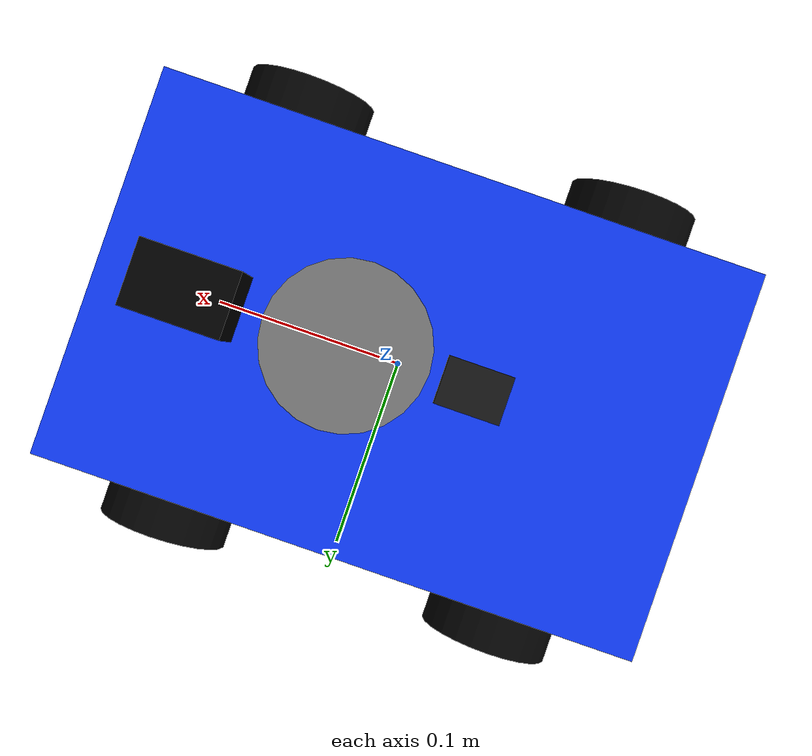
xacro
<?xml version="1.0"?>
<robot name="elegoo_robot" xmlns:xacro="http://www.ros.org/wiki/xacro">

  <!-- Robot dimensions -->

  <xacro:property name="PI" value="3.14159265359"/>

  <!-- Chassis -->
  <xacro:property name="base_length" value="0.28"/>
  <xacro:property name="base_width"  value="0.18"/>
  <xacro:property name="base_height" value="0.07"/>
  <xacro:property name="base_mass"   value="1.8"/>

  <!-- Wheels -->
  <xacro:property name="wheel_radius" value="0.032"/>
  <xacro:property name="wheel_width"  value="0.022"/>
  <xacro:property name="wheel_mass"   value="0.12"/>

  <!-- Wheel positions -->
  <xacro:property name="front_wheel_x" value="0.085"/>
  <xacro:property name="rear_wheel_x"  value="-0.085"/>
  <xacro:property name="wheel_y"       value="0.105"/>

  <!-- Diff-drive wheel separation = distance between rear driven wheels -->
  <xacro:property name="wheel_separation" value="${2.0 * wheel_y}"/>

  <!-- base_footprint is on ground, base_link is at chassis center -->
  <xacro:property name="base_z"  value="${wheel_radius + base_height/2.0}"/>
  <xacro:property name="wheel_z" value="${wheel_radius - base_z}"/>

  <!-- Top of chassis relative to base_link -->
  <xacro:property name="top_z" value="${base_height/2.0}"/>

  <!-- Camera -->
  <xacro:property name="camera_length" value="0.045"/>
  <xacro:property name="camera_width"  value="0.030"/>
  <xacro:property name="camera_height" value="0.032"/>

  <!-- IMU -->
  <xacro:property name="imu_length" value="0.030"/>
  <xacro:property name="imu_width"  value="0.022"/>
  <xacro:property name="imu_height" value="0.008"/>

  <!-- LiDAR -->
  <xacro:property name="lidar_radius" value="0.032"/>
  <xacro:property name="lidar_height" value="0.030"/>
  <xacro:property name="lidar_mount_height" value="0.055"/>

  <!-- Sensor heights relative to base_link -->
  <xacro:property name="camera_z" value="${top_z + camera_height/2.0}"/>
  <xacro:property name="imu_z"    value="${top_z + imu_height/2.0}"/>

  <!-- Materials -->

  <material name="blue">
    <color rgba="0.05 0.22 0.95 1.0"/>
  </material>

  <material name="black">
    <color rgba="0.01 0.01 0.01 1.0"/>
  </material>

  <material name="dark_gray">
    <color rgba="0.08 0.08 0.08 1.0"/>
  </material>

  <material name="gray">
    <color rgba="0.45 0.45 0.45 1.0"/>
  </material>

  <material name="camera_black">
    <color rgba="0.0 0.0 0.0 1.0"/>
  </material>

  <!-- Inertia macros -->

  <xacro:macro name="box_inertia" params="m x y z">
    <inertial>
      <mass value="${m}"/>
      <origin xyz="0 0 0" rpy="0 0 0"/>
      <inertia
        ixx="${(1.0/12.0) * m * (y*y + z*z)}"
        ixy="0"
        ixz="0"
        iyy="${(1.0/12.0) * m * (x*x + z*z)}"
        iyz="0"
        izz="${(1.0/12.0) * m * (x*x + y*y)}"/>
    </inertial>
  </xacro:macro>

  <xacro:macro name="cylinder_inertia_z" params="m r l">
    <!-- Cylinder axis is local Z -->
    <inertial>
      <mass value="${m}"/>
      <origin xyz="0 0 0" rpy="0 0 0"/>
      <inertia
        ixx="${(1.0/12.0) * m * (3.0*r*r + l*l)}"
        ixy="0"
        ixz="0"
        iyy="${(1.0/12.0) * m * (3.0*r*r + l*l)}"
        iyz="0"
        izz="${0.5 * m * r*r}"/>
    </inertial>
  </xacro:macro>

  <xacro:macro name="wheel_inertia_y" params="m r l">
    <!-- Wheel spin axis is local Y -->
    <inertial>
      <mass value="${m}"/>
      <origin xyz="0 0 0" rpy="0 0 0"/>
      <inertia
        ixx="${(1.0/12.0) * m * (3.0*r*r + l*l)}"
        ixy="0"
        ixz="0"
        iyy="${0.5 * m * r*r}"
        iyz="0"
        izz="${(1.0/12.0) * m * (3.0*r*r + l*l)}"/>
    </inertial>
  </xacro:macro>

  <!-- Base footprint and chassis -->

  <link name="base_footprint"/>

  <joint name="base_footprint_to_base_link" type="fixed">
    <parent link="base_footprint"/>
    <child link="base_link"/>
    <origin xyz="0 0 ${base_z}" rpy="0 0 0"/>
  </joint>

  <link name="base_link">
    <visual>
      <origin xyz="0 0 0" rpy="0 0 0"/>
      <geometry>
        <box size="${base_length} ${base_width} ${base_height}"/>
      </geometry>
      <material name="blue"/>
    </visual>

    <collision>
      <origin xyz="0 0 0" rpy="0 0 0"/>
      <geometry>
        <box size="${base_length} ${base_width} ${base_height}"/>
      </geometry>
    </collision>

    <xacro:box_inertia
      m="${base_mass}"
      x="${base_length}"
      y="${base_width}"
      z="${base_height}"/>
  </link>

  <gazebo reference="base_link">
    <material>Gazebo/Blue</material>
    <self_collide>false</self_collide>
  </gazebo>

  <!-- Rear driven wheel macro -->

  <xacro:macro name="rear_drive_wheel" params="name x y">
    <link name="${name}_link">
      <visual>
        <origin xyz="0 0 0" rpy="${PI/2.0} 0 0"/>
        <geometry>
          <cylinder radius="${wheel_radius}" length="${wheel_width}"/>
        </geometry>
        <material name="black"/>
      </visual>

      <collision>
        <origin xyz="0 0 0" rpy="${PI/2.0} 0 0"/>
        <geometry>
          <cylinder radius="${wheel_radius}" length="${wheel_width}"/>
        </geometry>
      </collision>

      <xacro:wheel_inertia_y
        m="${wheel_mass}"
        r="${wheel_radius}"
        l="${wheel_width}"/>
    </link>

    <joint name="${name}_joint" type="continuous">
      <parent link="base_link"/>
      <child link="${name}_link"/>
      <origin xyz="${x} ${y} ${wheel_z}" rpy="0 0 0"/>
      <axis xyz="0 1 0"/>

      <!-- Moderate damping reduces wheel jitter without locking the wheel -->
      <dynamics damping="0.10" friction="0.02"/>
    </joint>

    <gazebo reference="${name}_link">
      <material>Gazebo/Black</material>
      <self_collide>false</self_collide>

      <!-- Rear driven wheels: enough grip, not overly stiff -->
      <mu1>0.9</mu1>
      <mu2>0.7</mu2>
      <slip1>0.02</slip1>
      <slip2>0.08</slip2>
      <kp>60000.0</kp>
      <kd>6.0</kd>
    </gazebo>
  </xacro:macro>

  <!-- Front passive wheel macro -->
  <!-- Important:
       Visual looks like a wheel.
       Collision is a low-friction sphere.
       This makes the front act like caster wheels and stops them fighting turns.
  -->

  <xacro:macro name="front_passive_wheel" params="name x y">
    <link name="${name}_link">
      <!-- Visual wheel -->
      <visual>
        <origin xyz="0 0 0" rpy="${PI/2.0} 0 0"/>
        <geometry>
          <cylinder radius="${wheel_radius}" length="${wheel_width}"/>
        </geometry>
        <material name="black"/>
      </visual>

      <!-- Caster-like physics -->
      <collision>
        <origin xyz="0 0 0" rpy="0 0 0"/>
        <geometry>
          <sphere radius="${wheel_radius}"/>
        </geometry>
      </collision>

      <inertial>
        <mass value="0.03"/>
        <origin xyz="0 0 0" rpy="0 0 0"/>
        <inertia
          ixx="0.00002"
          ixy="0"
          ixz="0"
          iyy="0.00002"
          iyz="0"
          izz="0.00002"/>
      </inertial>
    </link>

    <!-- Fixed joint is more stable than a passive continuous joint.
         The sphere collision gives caster-like motion. -->
    <joint name="${name}_joint" type="fixed">
      <parent link="base_link"/>
      <child link="${name}_link"/>
      <origin xyz="${x} ${y} ${wheel_z}" rpy="0 0 0"/>
    </joint>

    <gazebo reference="${name}_link">
      <material>Gazebo/Black</material>
      <self_collide>false</self_collide>

      <!-- Very low friction so the front wheels do not steer the robot -->
      <mu1>0.03</mu1>
      <mu2>0.03</mu2>
      <slip1>1.0</slip1>
      <slip2>1.0</slip2>
      <kp>30000.0</kp>
      <kd>3.0</kd>
    </gazebo>
  </xacro:macro>

  <!-- Front wheels: passive caster-like wheels -->
  <xacro:front_passive_wheel
    name="front_left_wheel"
    x="${front_wheel_x}"
    y="${wheel_y}"/>

  <xacro:front_passive_wheel
    name="front_right_wheel"
    x="${front_wheel_x}"
    y="-${wheel_y}"/>

  <!-- Rear wheels: driven wheels -->
  <xacro:rear_drive_wheel
    name="rear_left_wheel"
    x="${rear_wheel_x}"
    y="${wheel_y}"/>

  <xacro:rear_drive_wheel
    name="rear_right_wheel"
    x="${rear_wheel_x}"
    y="-${wheel_y}"/>

  <!-- LiDAR mount -->

  <link name="lidar_mount_link">
    <visual>
      <origin xyz="0 0 0" rpy="0 0 0"/>
      <geometry>
        <box size="0.035 0.035 ${lidar_mount_height}"/>
      </geometry>
      <material name="blue"/>
    </visual>

    <collision>
      <origin xyz="0 0 0" rpy="0 0 0"/>
      <geometry>
        <box size="0.035 0.035 ${lidar_mount_height}"/>
      </geometry>
    </collision>

    <xacro:box_inertia
      m="0.03"
      x="0.035"
      y="0.035"
      z="${lidar_mount_height}"/>
  </link>

  <joint name="lidar_mount_joint" type="fixed">
    <parent link="base_link"/>
    <child link="lidar_mount_link"/>
    <origin xyz="0.02 0 ${top_z + lidar_mount_height/2.0}" rpy="0 0 0"/>
  </joint>

  <gazebo reference="lidar_mount_link">
    <material>Gazebo/Blue</material>
    <self_collide>false</self_collide>
  </gazebo>

  <!-- LiDAR link -->

  <link name="lidar_link">
    <visual>
      <origin xyz="0 0 0" rpy="0 0 0"/>
      <geometry>
        <cylinder radius="${lidar_radius}" length="${lidar_height}"/>
      </geometry>
      <material name="gray"/>
    </visual>

    <collision>
      <origin xyz="0 0 0" rpy="0 0 0"/>
      <geometry>
        <cylinder radius="${lidar_radius}" length="${lidar_height}"/>
      </geometry>
    </collision>

    <xacro:cylinder_inertia_z
      m="0.06"
      r="${lidar_radius}"
      l="${lidar_height}"/>
  </link>

  <joint name="lidar_joint" type="fixed">
    <parent link="lidar_mount_link"/>
    <child link="lidar_link"/>
    <origin xyz="0 0 ${lidar_mount_height/2.0 + lidar_height/2.0}" rpy="0 0 0"/>
  </joint>

  <gazebo reference="lidar_link">
    <material>Gazebo/Grey</material>
    <self_collide>false</self_collide>
  </gazebo>

  <!-- RGB-D camera link -->

  <link name="camera_link">
    <visual>
      <origin xyz="0 0 0" rpy="0 0 0"/>
      <geometry>
        <box size="${camera_length} ${camera_width} ${camera_height}"/>
      </geometry>
      <material name="camera_black"/>
    </visual>

    <collision>
      <origin xyz="0 0 0" rpy="0 0 0"/>
      <geometry>
        <box size="${camera_length} ${camera_width} ${camera_height}"/>
      </geometry>
    </collision>

    <xacro:box_inertia
      m="0.07"
      x="${camera_length}"
      y="${camera_width}"
      z="${camera_height}"/>
  </link>

  <joint name="camera_joint" type="fixed">
    <parent link="base_link"/>
    <child link="camera_link"/>
    <origin xyz="0.095 0 ${camera_z}" rpy="0 0 0"/>
  </joint>

  <gazebo reference="camera_link">
    <material>Gazebo/Black</material>
    <self_collide>false</self_collide>
  </gazebo>

  <!-- Optical frame: ROS camera convention, z forward, x right, y down -->
  <link name="camera_optical_frame"/>

  <joint name="camera_optical_joint" type="fixed">
    <parent link="camera_link"/>
    <child link="camera_optical_frame"/>
    <origin xyz="0.030 0 0" rpy="-1.5708 0 -1.5708"/>
  </joint>

  <!-- IMU link -->

  <link name="imu_link">
    <visual>
      <origin xyz="0 0 0" rpy="0 0 0"/>
      <geometry>
        <box size="${imu_length} ${imu_width} ${imu_height}"/>
      </geometry>
      <material name="dark_gray"/>
    </visual>

    <collision>
      <origin xyz="0 0 0" rpy="0 0 0"/>
      <geometry>
        <box size="${imu_length} ${imu_width} ${imu_height}"/>
      </geometry>
    </collision>

    <xacro:box_inertia
      m="0.025"
      x="${imu_length}"
      y="${imu_width}"
      z="${imu_height}"/>
  </link>

  <joint name="imu_joint" type="fixed">
    <parent link="base_link"/>
    <child link="imu_link"/>
    <origin xyz="-0.035 0 ${imu_z}" rpy="0 0 0"/>
  </joint>

  <gazebo reference="imu_link">
    <material>Gazebo/DarkGrey</material>
    <self_collide>false</self_collide>
  </gazebo>

  <!-- Gazebo Sim 2-wheel differential drive plugin -->
  <!-- Only rear wheels are driven. Front wheels are passive. -->

  <gazebo>
    <plugin
      filename="gz-sim-diff-drive-system"
      name="gz::sim::systems::DiffDrive">

      <left_joint>rear_left_wheel_joint</left_joint>
      <right_joint>rear_right_wheel_joint</right_joint>

      <wheel_separation>${wheel_separation}</wheel_separation>
      <wheel_radius>${wheel_radius}</wheel_radius>

      <topic>/cmd_vel</topic>
      <odom_topic>/odom</odom_topic>
      <tf_topic>/tf</tf_topic>

      <frame_id>odom</frame_id>
      <child_frame_id>base_footprint</child_frame_id>

      <odom_publish_frequency>50</odom_publish_frequency>

      <!-- Slow/smooth limits for cleaner odometry and SLAM -->
      <max_linear_velocity>0.90</max_linear_velocity>
      <min_linear_velocity>-0.45</min_linear_velocity>

      <max_angular_velocity>1.40</max_angular_velocity>
      <min_angular_velocity>-1.40</min_angular_velocity>

      <max_linear_acceleration>1.0</max_linear_acceleration>
      <min_linear_acceleration>-2.0</min_linear_acceleration>

      <max_angular_acceleration>2.0</max_angular_acceleration>
      <min_angular_acceleration>-4.0</min_angular_acceleration>

    </plugin>
  </gazebo>

  <!-- Gazebo LiDAR sensor -->
  <!-- Publishes Gazebo topic /scan -->
  <!-- Use /scan for slam_toolbox and Nav2 costmaps -->

  <gazebo reference="lidar_link">
    <sensor name="lidar_sensor" type="gpu_lidar">
      <always_on>true</always_on>
      <visualize>true</visualize>
      <update_rate>10</update_rate>
      <topic>/scan</topic>

      <!-- Critical: prevents scoped Gazebo frame like elegoo_robot/base_footprint/lidar_sensor -->
      <gz_frame_id>lidar_link</gz_frame_id>

      <ray>
        <scan>
          <horizontal>
            <samples>720</samples>
            <resolution>1</resolution>
            <min_angle>-${PI}</min_angle>
            <max_angle>${PI}</max_angle>
          </horizontal>
        </scan>

        <range>
          <!-- Higher min range avoids scanning robot body -->
          <min>0.22</min>
          <max>6.0</max>
          <resolution>0.01</resolution>
        </range>

        <noise>
          <type>gaussian</type>
          <mean>0.0</mean>
          <stddev>0.0</stddev>
        </noise>
      </ray>
    </sensor>
  </gazebo>

  <!-- Gazebo RGB-D camera sensor -->
  <!-- Publishes Gazebo camera topics under /camera -->

  <gazebo reference="camera_link">
    <sensor name="rgbd_camera" type="rgbd_camera">
      <always_on>true</always_on>
      <visualize>true</visualize>
      <update_rate>10</update_rate>
      <topic>/camera</topic>

      <gz_frame_id>camera_optical_frame</gz_frame_id>

      <camera>
        <horizontal_fov>1.047</horizontal_fov>

        <image>
          <width>640</width>
          <height>480</height>
          <format>R8G8B8</format>
        </image>

        <clip>
          <near>0.25</near>
          <far>4.0</far>
        </clip>

        <noise type="gaussian">
          <mean>0.0</mean>
          <stddev>0.0</stddev>
        </noise>
      </camera>
    </sensor>
  </gazebo>

  <!-- Gazebo IMU sensor -->
  <!-- Publishes Gazebo topic /imu -->

  <gazebo reference="imu_link">
    <sensor name="imu_sensor" type="imu">
      <always_on>true</always_on>
      <update_rate>100</update_rate>
      <topic>/imu</topic>
      <visualize>true</visualize>

      <gz_frame_id>imu_link</gz_frame_id>

      <imu>
        <angular_velocity>
          <x>
            <noise type="gaussian">
              <mean>0.0</mean>
              <stddev>0.0002</stddev>
            </noise>
          </x>

          <y>
            <noise type="gaussian">
              <mean>0.0</mean>
              <stddev>0.0002</stddev>
            </noise>
          </y>

          <z>
            <noise type="gaussian">
              <mean>0.0</mean>
              <stddev>0.0002</stddev>
            </noise>
          </z>
        </angular_velocity>

        <linear_acceleration>
          <x>
            <noise type="gaussian">
              <mean>0.0</mean>
              <stddev>0.017</stddev>
            </noise>
          </x>

          <y>
            <noise type="gaussian">
              <mean>0.0</mean>
              <stddev>0.017</stddev>
            </noise>
          </y>

          <z>
            <noise type="gaussian">
              <mean>0.0</mean>
              <stddev>0.017</stddev>
            </noise>
          </z>
        </linear_acceleration>
      </imu>
    </sensor>
  </gazebo>

</robot>
